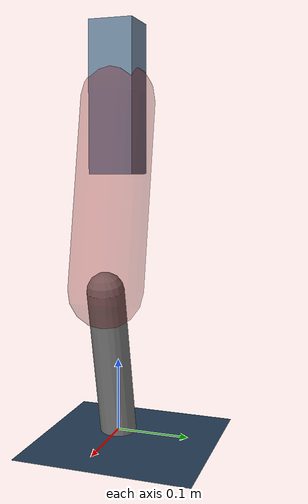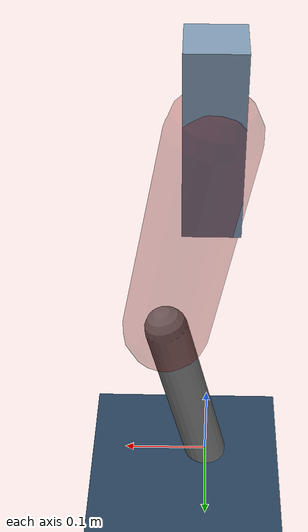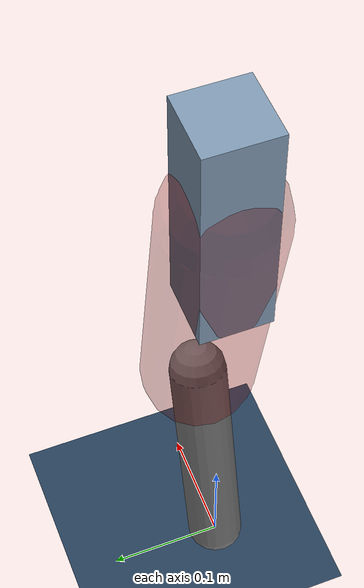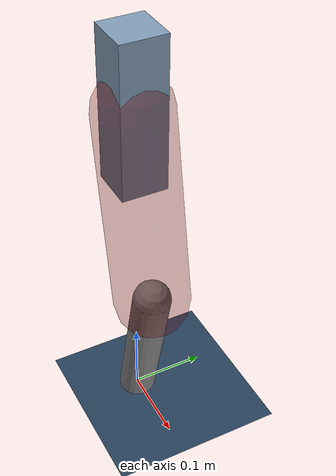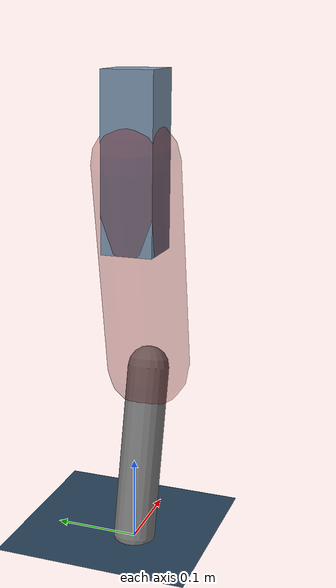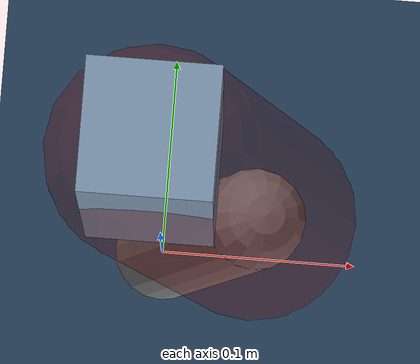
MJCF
<mujoco model="Hopper2D">
	<compiler inertiafromgeom="true" angle="radian" />
	<option timestep="0.001" integrator="implicit" cone="elliptic" solver="Newton" tolerance="1e-10" />

	<default>
		<geom contype="1" conaffinity="1" condim="3" friction="2 0.005 0.0001" solref="0.005 1" />
		<joint limited="true" damping="0.1" />
	</default>

	<asset>
		<texture name="skybox" type="skybox" builtin="gradient" rgb1=".4 .6 .8" rgb2="0 0 0" width="800" height="800" />
		<texture name="grid" type="2d" builtin="checker" rgb1=".1 .2 .3" rgb2=".2 .3 .4" width="300" height="300" mark="edge" markrgb=".2 .3 .4" />
		<material name="ground" texture="grid" texrepeat="1 1" texuniform="true" reflectance="0.1" />
		<material name="leg" rgba="0.5 0.6 0.7 1" />
	</asset>

	<worldbody>

		<geom name="floor" type="plane" size="5 5 0.25" material="ground" />

		<light directional="false" diffuse="0.8 0.8 0.8" specular="0.3 0.3 0.3" pos="0 0 2" dir="0 0 -1" />
		<light mode="targetbodycom" target="base" directional="false" diffuse="0.8 0.8 0.8" specular="0.3 0.3 0.3" pos="0 0 2" dir="0 0 -1" />

		<camera name="fixed" pos="0 -2 1" xyaxes="1 0 0 0 0 1" />
		<camera name="tracking" mode="trackcom" pos="0 -3 1" />

		<body name="root" pos="0 0 0.4573746269761784">
			<joint name="slide_x" type="slide" axis="1 0 0" range="-100 100" />
			<joint name="slide_z" type="slide" axis="0 0 1" range="0 10" />

			<body name="base" pos="0 0 0">
				<geom name="torso" type="box" size="0.03 0.03 0.1" mass="4.302" material="leg" />

				<body name="link1" pos="0 0 0" euler="0 1.3833323981762078 0">
					<joint type="hinge" axis="0 -1 0" pos="0 0 0" name="hinge1" limited="true" range="-3.14 3.14" stiffness="0" damping="0.1" />
					<geom name="thigh" type="capsule" fromto="0 0 0 0.2566867430853168 0 0" size="0.05" rgba="0.5 0 0 0.3" mass="0.8737855320218237" />

					<body name="link2" pos="0.2566867430853168 0 0" euler="0 0.4165186107987916 0">
						<joint type="hinge" axis="0 -1 0" pos="0 0 0" name="hinge2" limited="true" range="-3.14 3.14" stiffness="0" damping="0.1" />
						<geom name="shank" type="capsule" fromto="0 0 0 0.21068788389086163 0 0" size="0.025" mass="0.4098503071126893" />

					</body>
				</body>
			</body>
		</body>
	</worldbody>

	<actuator>
		<motor name="torque1" joint="hinge1" ctrlrange="-245.99575386297198 245.99575386297198" ctrllimited="true" gear="1" />
		<motor name="torque2" joint="hinge2" ctrlrange="-95.81129801308475 95.81129801308475" ctrllimited="true" gear="1" />
	</actuator>
</mujoco>
